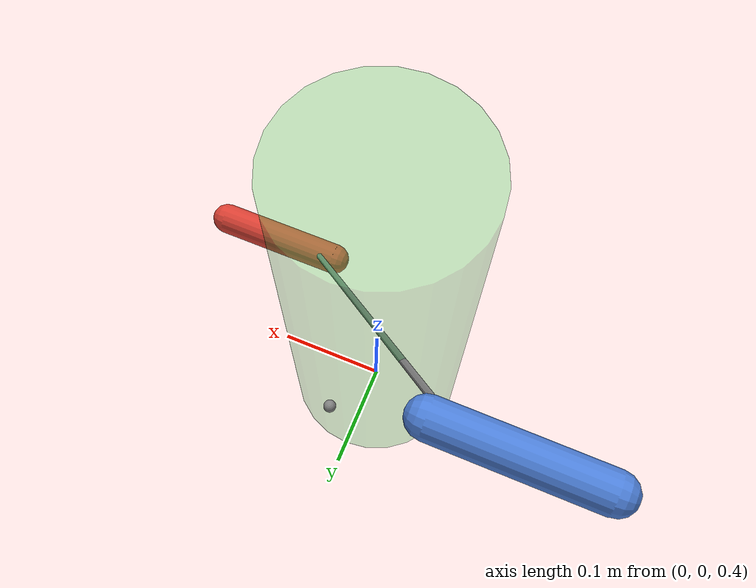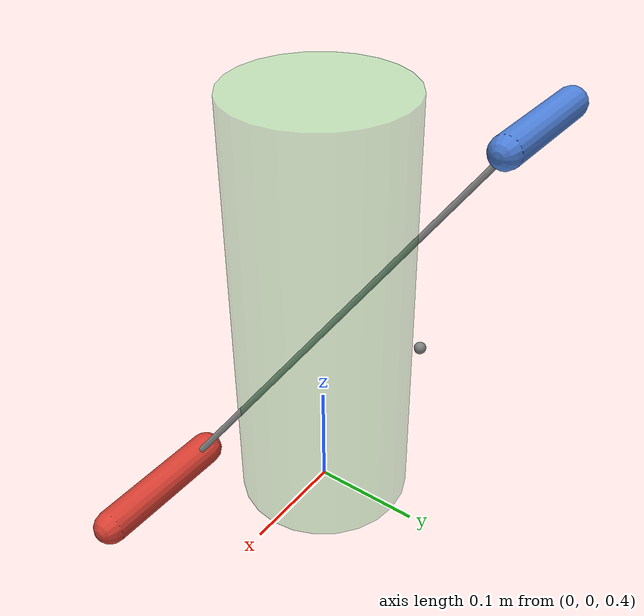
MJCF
<mujoco model="cylinder-wrap">
  <option gravity="0 0 0" timestep="0.002"/>
  <compiler angle="radian"/>

  <worldbody>
    <!-- Wrap cylinder (translucent, vertical, no collision) -->
    <body name="cyl_body" pos="0 0 0.6">
      <geom name="wrap_cyl" type="cylinder" size="0.08 0.2"
            rgba="0.2 0.8 0.3 0.3" contype="0" conaffinity="0"/>
      <site name="side" pos="0 0.1 0" size="0.005"/>
    </body>

    <!-- Upper arm (blue, motor-driven) -->
    <body name="upper" pos="-0.2 0.12 0.75">
      <joint name="j_up" type="hinge" axis="0 1 0" damping="1.0"
             stiffness="3" springref="0"/>
      <geom name="upper_geom" type="capsule" fromto="0 0 0 0.12 0 0"
            size="0.015" mass="0.5" rgba="0.3 0.5 0.85 1"/>
      <site name="s_up" pos="0.1 0 0" size="0.012" rgba="1 1 0 1"/>
    </body>

    <!-- Lower arm (red, passive) -->
    <body name="lower" pos="0.2 -0.08 0.45">
      <joint name="j_down" type="hinge" axis="0 1 0" damping="1.0"
             stiffness="3" springref="0"/>
      <geom name="lower_geom" type="capsule" fromto="0 0 0 -0.12 0 0"
            size="0.015" mass="0.5" rgba="0.85 0.25 0.2 1"/>
      <site name="s_down" pos="-0.1 0 0" size="0.012" rgba="1 1 0 1"/>
    </body>
  </worldbody>

  <tendon>
    <spatial name="cyl_tendon">
      <site site="s_up"/>
      <geom geom="wrap_cyl" sidesite="side"/>
      <site site="s_down"/>
    </spatial>
  </tendon>

  <actuator>
    <motor name="drive" joint="j_up" gear="1"/>
  </actuator>

  <sensor>
    <tendonpos name="ten_pos" tendon="cyl_tendon"/>
    <tendonvel name="ten_vel" tendon="cyl_tendon"/>
  </sensor>
</mujoco>
